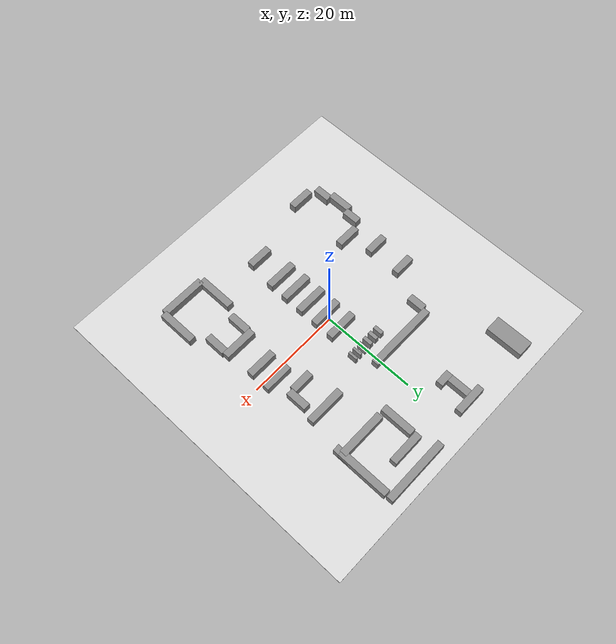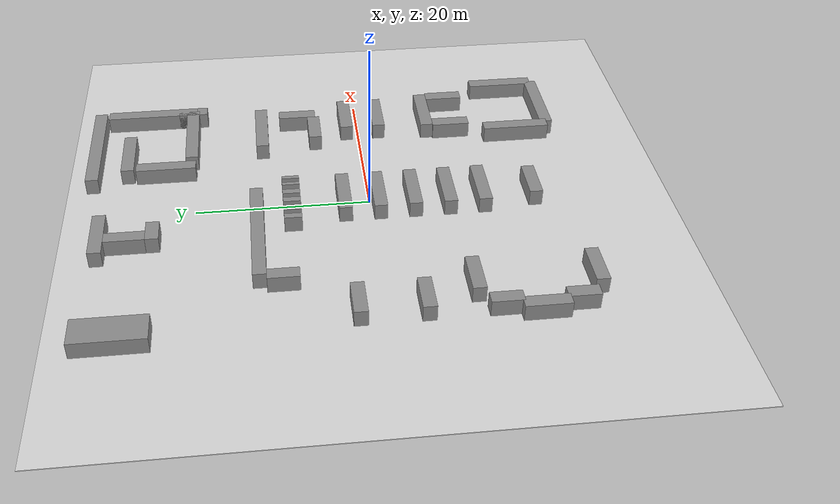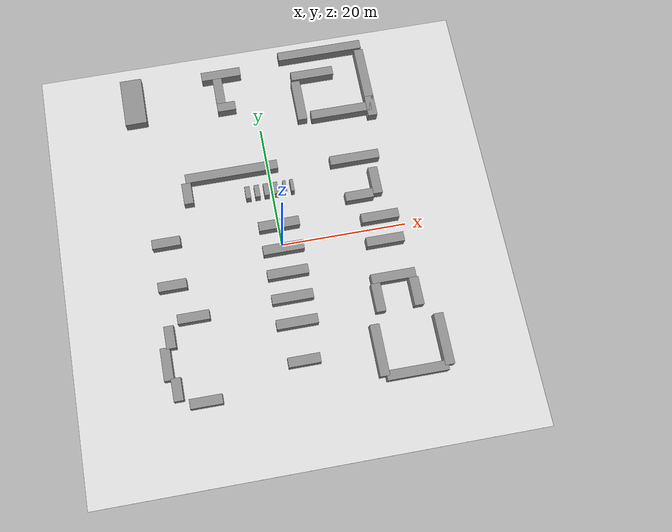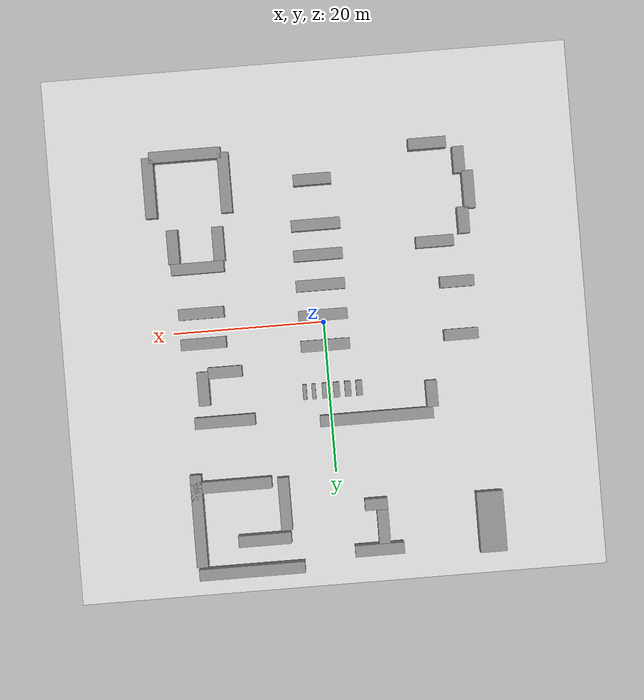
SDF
<?xml version="1.0" ?>
<sdf version='1.7'>
  <world name='playground'>

    <light name='sun' type='directional'>
      <cast_shadows>1</cast_shadows>
      <pose>0 0 10 0 -0 0</pose>
      <diffuse>0.8 0.8 0.8 1</diffuse>
      <specular>0.2 0.2 0.2 1</specular>
      <attenuation>
        <range>1000</range>
        <constant>0.9</constant>
        <linear>0.01</linear>
        <quadratic>0.001</quadratic>
      </attenuation>
      <direction>-0.5 0.1 -0.9</direction>
    </light>

    <physics name="default_physics" default="0" type="ode">
      <max_step_size>0.001</max_step_size>
      <real_time_factor>1</real_time_factor>
      <real_time_update_rate>1000</real_time_update_rate>
    </physics>

    <scene>
      <ambient>0.4 0.4 0.4 1</ambient>
      <background>0.7 0.7 0.7 1</background>
      <shadows>1</shadows>
      <grid>false</grid>
      <origin_visual>false</origin_visual>
    </scene>

    <gravity>0 0 -9.8</gravity>

    <plugin name="gazebo_occupancy_map" filename="libgazebo_2Dmap_plugin.so">
      <map_resolution>0.1</map_resolution>
      <map_height>0.3</map_height>
      <map_size_x>70</map_size_x>
      <map_size_y>70</map_size_y>
      <init_robot_x>0</init_robot_x>
      <init_robot_y>0</init_robot_y>
    </plugin>

    <gui fullscreen='0'>
      <camera name='user_camera'>
        <pose>0 5 55 0 1.5707 0</pose>
        <view_controller>orbit</view_controller>
        <projection_type>perspective</projection_type>
      </camera>
    </gui>

    <model name='floor'>
      <static>1</static>
      <pose>0 0 0 0 0 0</pose>
      <link name='link'>
        <collision name='collision'>
          <geometry><box><size>70 70 0.1</size></box></geometry>
        </collision>
        <visual name='visual'>
          <geometry><box><size>70 70 0.1</size></box></geometry>
          <material>
            <ambient>0.85 0.85 0.85 1</ambient>
            <diffuse>0.85 0.85 0.85 1</diffuse>
          </material>
        </visual>
      </link>
    </model>

    <model name='tall_rect_left'>
      <static>1</static>
      <pose>-20 28 1.0 0 0 0</pose>
      <link name='link'>
        <collision name='collision'>
          <geometry><box><size>3.5 8.0 2.0</size></box></geometry>
        </collision>
        <visual name='visual'>
          <geometry><box><size>3.5 8.0 2.0</size></box></geometry>
          <material>
            <ambient>0.55 0.55 0.55 1</ambient>
            <diffuse>0.55 0.55 0.55 1</diffuse>
          </material>
        </visual>
      </link>
    </model>

    <model name='t_top_bar'>
      <static>1</static>
      <pose>-5.0 30.5 1.0 0 0 0</pose>
      <link name='link'>
        <collision name='collision'>
          <geometry><box><size>6.5 1.5 2.0</size></box></geometry>
        </collision>
        <visual name='visual'>
          <geometry><box><size>6.5 1.5 2.0</size></box></geometry>
          <material>
            <ambient>0.55 0.55 0.55 1</ambient>
            <diffuse>0.55 0.55 0.55 1</diffuse>
          </material>
        </visual>
      </link>
    </model>

    <model name='t_stem_upper'>
      <static>1</static>
      <pose>-5.75 27.5 1.0 0 0 0</pose>
      <link name='link'>
        <collision name='collision'>
          <geometry><box><size>1.5 4.5 2.0</size></box></geometry>
        </collision>
        <visual name='visual'>
          <geometry><box><size>1.5 4.5 2.0</size></box></geometry>
          <material>
            <ambient>0.55 0.55 0.55 1</ambient>
            <diffuse>0.55 0.55 0.55 1</diffuse>
          </material>
        </visual>
      </link>
    </model>

    <model name='t_stem_lower'>
      <static>1</static>
      <pose>-5.0 24.5 1.0 0 0 0</pose>
      <link name='link'>
        <collision name='collision'>
          <geometry><box><size>3.0 1.5 2.0</size></box></geometry>
        </collision>
        <visual name='visual'>
          <geometry><box><size>3.0 1.5 2.0</size></box></geometry>
          <material>
            <ambient>0.55 0.55 0.55 1</ambient>
            <diffuse>0.55 0.55 0.55 1</diffuse>
          </material>
        </visual>
      </link>
    </model>

    <model name='maze_top'>
      <static>1</static>
      <pose>12.0 32.0 1.0 0 0 0</pose>
      <link name='link'>
        <collision name='collision'>
          <geometry><box><size>14.0 1.5 2.0</size></box></geometry>
        </collision>
        <visual name='visual'>
          <geometry><box><size>14.0 1.5 2.0</size></box></geometry>
          <material>
            <ambient>0.55 0.55 0.55 1</ambient>
            <diffuse>0.55 0.55 0.55 1</diffuse>
          </material>
        </visual>
      </link>
    </model>

    <model name='maze_right'>
      <static>1</static>
      <pose>18.5 25.5 1.0 0 0 0</pose>
      <link name='link'>
        <collision name='collision'>
          <geometry><box><size>1.5 11.0 2.0</size></box></geometry>
        </collision>
        <visual name='visual'>
          <geometry><box><size>1.5 11.0 2.0</size></box></geometry>
          <material>
            <ambient>0.55 0.55 0.55 1</ambient>
            <diffuse>0.55 0.55 0.55 1</diffuse>
          </material>
        </visual>
      </link>
    </model>

    <model name='maze_inner_top'>
      <static>1</static>
      <pose>10.0 28.0 1.0 0 0 0</pose>
      <link name='link'>
        <collision name='collision'>
          <geometry><box><size>7.0 1.5 2.0</size></box></geometry>
        </collision>
        <visual name='visual'>
          <geometry><box><size>7.0 1.5 2.0</size></box></geometry>
          <material>
            <ambient>0.55 0.55 0.55 1</ambient>
            <diffuse>0.55 0.55 0.55 1</diffuse>
          </material>
        </visual>
      </link>
    </model>

    <model name='maze_inner_left'>
      <static>1</static>
      <pose>7.0 23.5 1.0 0 0 0</pose>
      <link name='link'>
        <collision name='collision'>
          <geometry><box><size>1.5 7.0 2.0</size></box></geometry>
        </collision>
        <visual name='visual'>
          <geometry><box><size>1.5 7.0 2.0</size></box></geometry>
          <material>
            <ambient>0.55 0.55 0.55 1</ambient>
            <diffuse>0.55 0.55 0.55 1</diffuse>
          </material>
        </visual>
      </link>
    </model>

    <model name='maze_bottom'>
      <static>1</static>
      <pose>13.5 20.5 1.0 0 0 0</pose>
      <link name='link'>
        <collision name='collision'>
          <geometry><box><size>10.0 1.5 2.0</size></box></geometry>
        </collision>
        <visual name='visual'>
          <geometry><box><size>10.0 1.5 2.0</size></box></geometry>
          <material>
            <ambient>0.55 0.55 0.55 1</ambient>
            <diffuse>0.55 0.55 0.55 1</diffuse>
          </material>
        </visual>
      </link>
    </model>

    <model name='maze_mid_right'>
      <static>1</static>
      <pose>18.5 20.5 1.0 0 0 0</pose>
      <link name='link'>
        <collision name='collision'>
          <geometry><box><size>1.5 3.5 2.0</size></box></geometry>
        </collision>
        <visual name='visual'>
          <geometry><box><size>1.5 3.5 2.0</size></box></geometry>
          <material>
            <ambient>0.55 0.55 0.55 1</ambient>
            <diffuse>0.55 0.55 0.55 1</diffuse>
          </material>
        </visual>
      </link>
    </model>

    <model name='long_horiz'>
      <static>1</static>
      <pose>-6.0 13.0 1.0 0 0 0</pose>
      <link name='link'>
        <collision name='collision'>
          <geometry><box><size>15.0 1.5 2.0</size></box></geometry>
        </collision>
        <visual name='visual'>
          <geometry><box><size>15.0 1.5 2.0</size></box></geometry>
          <material>
            <ambient>0.55 0.55 0.55 1</ambient>
            <diffuse>0.55 0.55 0.55 1</diffuse>
          </material>
        </visual>
      </link>
    </model>

    <model name='l_stub'>
      <static>1</static>
      <pose>-13.5 10.5 1.0 0 0 0</pose>
      <link name='link'>
        <collision name='collision'>
          <geometry><box><size>1.5 3.5 2.0</size></box></geometry>
        </collision>
        <visual name='visual'>
          <geometry><box><size>1.5 3.5 2.0</size></box></geometry>
          <material>
            <ambient>0.55 0.55 0.55 1</ambient>
            <diffuse>0.55 0.55 0.55 1</diffuse>
          </material>
        </visual>
      </link>
    </model>

    <model name='pillar_1'>
      <static>1</static>
      <pose>-4.0 9.0 1.0 0 0 0</pose>
      <link name='link'>
        <collision name='collision'>
          <geometry><box><size>0.8 2.0 2.0</size></box></geometry>
        </collision>
        <visual name='visual'>
          <geometry><box><size>0.8 2.0 2.0</size></box></geometry>
          <material>
            <ambient>0.55 0.55 0.55 1</ambient>
            <diffuse>0.55 0.55 0.55 1</diffuse>
          </material>
        </visual>
      </link>
    </model>

    <model name='pillar_2'>
      <static>1</static>
      <pose>-2.5 9.0 1.0 0 0 0</pose>
      <link name='link'>
        <collision name='collision'>
          <geometry><box><size>0.8 2.0 2.0</size></box></geometry>
        </collision>
        <visual name='visual'>
          <geometry><box><size>0.8 2.0 2.0</size></box></geometry>
          <material>
            <ambient>0.55 0.55 0.55 1</ambient>
            <diffuse>0.55 0.55 0.55 1</diffuse>
          </material>
        </visual>
      </link>
    </model>

    <model name='pillar_3'>
      <static>1</static>
      <pose>-1.0 9.0 1.0 0 0 0</pose>
      <link name='link'>
        <collision name='collision'>
          <geometry><box><size>0.8 2.0 2.0</size></box></geometry>
        </collision>
        <visual name='visual'>
          <geometry><box><size>0.8 2.0 2.0</size></box></geometry>
          <material>
            <ambient>0.55 0.55 0.55 1</ambient>
            <diffuse>0.55 0.55 0.55 1</diffuse>
          </material>
        </visual>
      </link>
    </model>

    <model name='pillar_4'>
      <static>1</static>
      <pose>0.5 9.0 1.0 0 0 0</pose>
      <link name='link'>
        <collision name='collision'>
          <geometry><box><size>0.8 2.0 2.0</size></box></geometry>
        </collision>
        <visual name='visual'>
          <geometry><box><size>0.8 2.0 2.0</size></box></geometry>
          <material>
            <ambient>0.55 0.55 0.55 1</ambient>
            <diffuse>0.55 0.55 0.55 1</diffuse>
          </material>
        </visual>
      </link>
    </model>

    <model name='pillar_5'>
      <static>1</static>
      <pose>2.0 9.0 1.0 0 0 0</pose>
      <link name='link'>
        <collision name='collision'>
          <geometry><box><size>0.5 2.0 2.0</size></box></geometry>
        </collision>
        <visual name='visual'>
          <geometry><box><size>0.5 2.0 2.0</size></box></geometry>
          <material>
            <ambient>0.55 0.55 0.55 1</ambient>
            <diffuse>0.55 0.55 0.55 1</diffuse>
          </material>
        </visual>
      </link>
    </model>

    <model name='pillar_6'>
      <static>1</static>
      <pose>3.2 9.0 1.0 0 0 0</pose>
      <link name='link'>
        <collision name='collision'>
          <geometry><box><size>0.5 2.0 2.0</size></box></geometry>
        </collision>
        <visual name='visual'>
          <geometry><box><size>0.5 2.0 2.0</size></box></geometry>
          <material>
            <ambient>0.55 0.55 0.55 1</ambient>
            <diffuse>0.55 0.55 0.55 1</diffuse>
          </material>
        </visual>
      </link>
    </model>

    <model name='horiz_mid_right'>
      <static>1</static>
      <pose>14.0 12.0 1.0 0 0 0</pose>
      <link name='link'>
        <collision name='collision'>
          <geometry><box><size>8.0 1.5 2.0</size></box></geometry>
        </collision>
        <visual name='visual'>
          <geometry><box><size>8.0 1.5 2.0</size></box></geometry>
          <material>
            <ambient>0.55 0.55 0.55 1</ambient>
            <diffuse>0.55 0.55 0.55 1</diffuse>
          </material>
        </visual>
      </link>
    </model>

    <model name='t_junc_vert'>
      <static>1</static>
      <pose>16.5 7.5 1.0 0 0 0</pose>
      <link name='link'>
        <collision name='collision'>
          <geometry><box><size>1.5 4.5 2.0</size></box></geometry>
        </collision>
        <visual name='visual'>
          <geometry><box><size>1.5 4.5 2.0</size></box></geometry>
          <material>
            <ambient>0.55 0.55 0.55 1</ambient>
            <diffuse>0.55 0.55 0.55 1</diffuse>
          </material>
        </visual>
      </link>
    </model>

    <model name='t_junc_horiz'>
      <static>1</static>
      <pose>13.5 5.5 1.0 0 0 0</pose>
      <link name='link'>
        <collision name='collision'>
          <geometry><box><size>4.5 1.5 2.0</size></box></geometry>
        </collision>
        <visual name='visual'>
          <geometry><box><size>4.5 1.5 2.0</size></box></geometry>
          <material>
            <ambient>0.55 0.55 0.55 1</ambient>
            <diffuse>0.55 0.55 0.55 1</diffuse>
          </material>
        </visual>
      </link>
    </model>

    <model name='small_rect_1'>
      <static>1</static>
      <pose>-18.0 3.0 1.0 0 0 0</pose>
      <link name='link'>
        <collision name='collision'>
          <geometry><box><size>4.5 1.5 2.0</size></box></geometry>
        </collision>
        <visual name='visual'>
          <geometry><box><size>4.5 1.5 2.0</size></box></geometry>
          <material>
            <ambient>0.55 0.55 0.55 1</ambient>
            <diffuse>0.55 0.55 0.55 1</diffuse>
          </material>
        </visual>
      </link>
    </model>

    <model name='small_rect_2'>
      <static>1</static>
      <pose>-18.0 -4.0 1.0 0 0 0</pose>
      <link name='link'>
        <collision name='collision'>
          <geometry><box><size>4.5 1.5 2.0</size></box></geometry>
        </collision>
        <visual name='visual'>
          <geometry><box><size>4.5 1.5 2.0</size></box></geometry>
          <material>
            <ambient>0.55 0.55 0.55 1</ambient>
            <diffuse>0.55 0.55 0.55 1</diffuse>
          </material>
        </visual>
      </link>
    </model>

    <model name='curve_top'>
      <static>1</static>
      <pose>-15.5 -9.5 1.0 0 0 0</pose>
      <link name='link'>
        <collision name='collision'>
          <geometry><box><size>5.0 1.5 2.0</size></box></geometry>
        </collision>
        <visual name='visual'>
          <geometry><box><size>5.0 1.5 2.0</size></box></geometry>
          <material>
            <ambient>0.55 0.55 0.55 1</ambient>
            <diffuse>0.55 0.55 0.55 1</diffuse>
          </material>
        </visual>
      </link>
    </model>

    <model name='curve_upper_mid'>
      <static>1</static>
      <pose>-19.5 -12.0 1.0 0 0 0</pose>
      <link name='link'>
        <collision name='collision'>
          <geometry><box><size>1.5 3.5 2.0</size></box></geometry>
        </collision>
        <visual name='visual'>
          <geometry><box><size>1.5 3.5 2.0</size></box></geometry>
          <material>
            <ambient>0.55 0.55 0.55 1</ambient>
            <diffuse>0.55 0.55 0.55 1</diffuse>
          </material>
        </visual>
      </link>
    </model>

    <model name='curve_left'>
      <static>1</static>
      <pose>-20.5 -16.0 1.0 0 0 0</pose>
      <link name='link'>
        <collision name='collision'>
          <geometry><box><size>1.5 5.0 2.0</size></box></geometry>
        </collision>
        <visual name='visual'>
          <geometry><box><size>1.5 5.0 2.0</size></box></geometry>
          <material>
            <ambient>0.55 0.55 0.55 1</ambient>
            <diffuse>0.55 0.55 0.55 1</diffuse>
          </material>
        </visual>
      </link>
    </model>

    <model name='curve_lower_mid'>
      <static>1</static>
      <pose>-19.5 -20.0 1.0 0 0 0</pose>
      <link name='link'>
        <collision name='collision'>
          <geometry><box><size>1.5 3.5 2.0</size></box></geometry>
        </collision>
        <visual name='visual'>
          <geometry><box><size>1.5 3.5 2.0</size></box></geometry>
          <material>
            <ambient>0.55 0.55 0.55 1</ambient>
            <diffuse>0.55 0.55 0.55 1</diffuse>
          </material>
        </visual>
      </link>
    </model>

    <model name='curve_bottom'>
      <static>1</static>
      <pose>-15.5 -22.5 1.0 0 0 0</pose>
      <link name='link'>
        <collision name='collision'>
          <geometry><box><size>5.0 1.5 2.0</size></box></geometry>
        </collision>
        <visual name='visual'>
          <geometry><box><size>5.0 1.5 2.0</size></box></geometry>
          <material>
            <ambient>0.55 0.55 0.55 1</ambient>
            <diffuse>0.55 0.55 0.55 1</diffuse>
          </material>
        </visual>
      </link>
    </model>

    <model name='stack_bar_1'>
      <static>1</static>
      <pose>0.0 3.0 1.0 0 0 0</pose>
      <link name='link'>
        <collision name='collision'>
          <geometry><box><size>6.5 1.5 2.0</size></box></geometry>
        </collision>
        <visual name='visual'>
          <geometry><box><size>6.5 1.5 2.0</size></box></geometry>
          <material>
            <ambient>0.55 0.55 0.55 1</ambient>
            <diffuse>0.55 0.55 0.55 1</diffuse>
          </material>
        </visual>
      </link>
    </model>

    <model name='stack_bar_2'>
      <static>1</static>
      <pose>0.0 -1.0 1.0 0 0 0</pose>
      <link name='link'>
        <collision name='collision'>
          <geometry><box><size>6.5 1.5 2.0</size></box></geometry>
        </collision>
        <visual name='visual'>
          <geometry><box><size>6.5 1.5 2.0</size></box></geometry>
          <material>
            <ambient>0.55 0.55 0.55 1</ambient>
            <diffuse>0.55 0.55 0.55 1</diffuse>
          </material>
        </visual>
      </link>
    </model>

    <model name='stack_bar_3'>
      <static>1</static>
      <pose>0.0 -5.0 1.0 0 0 0</pose>
      <link name='link'>
        <collision name='collision'>
          <geometry><box><size>6.5 1.5 2.0</size></box></geometry>
        </collision>
        <visual name='visual'>
          <geometry><box><size>6.5 1.5 2.0</size></box></geometry>
          <material>
            <ambient>0.55 0.55 0.55 1</ambient>
            <diffuse>0.55 0.55 0.55 1</diffuse>
          </material>
        </visual>
      </link>
    </model>

    <model name='stack_bar_4'>
      <static>1</static>
      <pose>0.0 -9.0 1.0 0 0 0</pose>
      <link name='link'>
        <collision name='collision'>
          <geometry><box><size>6.5 1.5 2.0</size></box></geometry>
        </collision>
        <visual name='visual'>
          <geometry><box><size>6.5 1.5 2.0</size></box></geometry>
          <material>
            <ambient>0.55 0.55 0.55 1</ambient>
            <diffuse>0.55 0.55 0.55 1</diffuse>
          </material>
        </visual>
      </link>
    </model>

    <model name='stack_bar_5'>
      <static>1</static>
      <pose>0.0 -13.0 1.0 0 0 0</pose>
      <link name='link'>
        <collision name='collision'>
          <geometry><box><size>6.5 1.5 2.0</size></box></geometry>
        </collision>
        <visual name='visual'>
          <geometry><box><size>6.5 1.5 2.0</size></box></geometry>
          <material>
            <ambient>0.55 0.55 0.55 1</ambient>
            <diffuse>0.55 0.55 0.55 1</diffuse>
          </material>
        </visual>
      </link>
    </model>

    <model name='small_rect_btm_ctr'>
      <static>1</static>
      <pose>0.0 -19.0 1.0 0 0 0</pose>
      <link name='link'>
        <collision name='collision'>
          <geometry><box><size>5.0 1.5 2.0</size></box></geometry>
        </collision>
        <visual name='visual'>
          <geometry><box><size>5.0 1.5 2.0</size></box></geometry>
          <material>
            <ambient>0.55 0.55 0.55 1</ambient>
            <diffuse>0.55 0.55 0.55 1</diffuse>
          </material>
        </visual>
      </link>
    </model>

    <model name='stacked_r1'>
      <static>1</static>
      <pose>16.0 1.5 1.0 0 0 0</pose>
      <link name='link'>
        <collision name='collision'>
          <geometry><box><size>6.0 1.5 2.0</size></box></geometry>
        </collision>
        <visual name='visual'>
          <geometry><box><size>6.0 1.5 2.0</size></box></geometry>
          <material>
            <ambient>0.55 0.55 0.55 1</ambient>
            <diffuse>0.55 0.55 0.55 1</diffuse>
          </material>
        </visual>
      </link>
    </model>

    <model name='stacked_r2'>
      <static>1</static>
      <pose>16.0 -2.5 1.0 0 0 0</pose>
      <link name='link'>
        <collision name='collision'>
          <geometry><box><size>6.0 1.5 2.0</size></box></geometry>
        </collision>
        <visual name='visual'>
          <geometry><box><size>6.0 1.5 2.0</size></box></geometry>
          <material>
            <ambient>0.55 0.55 0.55 1</ambient>
            <diffuse>0.55 0.55 0.55 1</diffuse>
          </material>
        </visual>
      </link>
    </model>

    <model name='h_top'>
      <static>1</static>
      <pose>16.0 -8.5 1.0 0 0 0</pose>
      <link name='link'>
        <collision name='collision'>
          <geometry><box><size>7.0 1.5 2.0</size></box></geometry>
        </collision>
        <visual name='visual'>
          <geometry><box><size>7.0 1.5 2.0</size></box></geometry>
          <material>
            <ambient>0.55 0.55 0.55 1</ambient>
            <diffuse>0.55 0.55 0.55 1</diffuse>
          </material>
        </visual>
      </link>
    </model>

    <model name='h_left_leg'>
      <static>1</static>
      <pose>13.0 -11.5 1.0 0 0 0</pose>
      <link name='link'>
        <collision name='collision'>
          <geometry><box><size>1.5 4.5 2.0</size></box></geometry>
        </collision>
        <visual name='visual'>
          <geometry><box><size>1.5 4.5 2.0</size></box></geometry>
          <material>
            <ambient>0.55 0.55 0.55 1</ambient>
            <diffuse>0.55 0.55 0.55 1</diffuse>
          </material>
        </visual>
      </link>
    </model>

    <model name='h_right_leg'>
      <static>1</static>
      <pose>19.0 -11.5 1.0 0 0 0</pose>
      <link name='link'>
        <collision name='collision'>
          <geometry><box><size>1.5 4.5 2.0</size></box></geometry>
        </collision>
        <visual name='visual'>
          <geometry><box><size>1.5 4.5 2.0</size></box></geometry>
          <material>
            <ambient>0.55 0.55 0.55 1</ambient>
            <diffuse>0.55 0.55 0.55 1</diffuse>
          </material>
        </visual>
      </link>
    </model>

    <model name='u_left'>
      <static>1</static>
      <pose>11.5 -19.5 1.0 0 0 0</pose>
      <link name='link'>
        <collision name='collision'>
          <geometry><box><size>1.5 8.0 2.0</size></box></geometry>
        </collision>
        <visual name='visual'>
          <geometry><box><size>1.5 8.0 2.0</size></box></geometry>
          <material>
            <ambient>0.55 0.55 0.55 1</ambient>
            <diffuse>0.55 0.55 0.55 1</diffuse>
          </material>
        </visual>
      </link>
    </model>

    <model name='u_bottom'>
      <static>1</static>
      <pose>16.5 -23.5 1.0 0 0 0</pose>
      <link name='link'>
        <collision name='collision'>
          <geometry><box><size>9.5 1.5 2.0</size></box></geometry>
        </collision>
        <visual name='visual'>
          <geometry><box><size>9.5 1.5 2.0</size></box></geometry>
          <material>
            <ambient>0.55 0.55 0.55 1</ambient>
            <diffuse>0.55 0.55 0.55 1</diffuse>
          </material>
        </visual>
      </link>
    </model>

    <model name='u_right'>
      <static>1</static>
      <pose>21.5 -19.5 1.0 0 0 0</pose>
      <link name='link'>
        <collision name='collision'>
          <geometry><box><size>1.5 8.0 2.0</size></box></geometry>
        </collision>
        <visual name='visual'>
          <geometry><box><size>1.5 8.0 2.0</size></box></geometry>
          <material>
            <ambient>0.55 0.55 0.55 1</ambient>
            <diffuse>0.55 0.55 0.55 1</diffuse>
          </material>
        </visual>
      </link>
    </model>
  </world>
</sdf>
